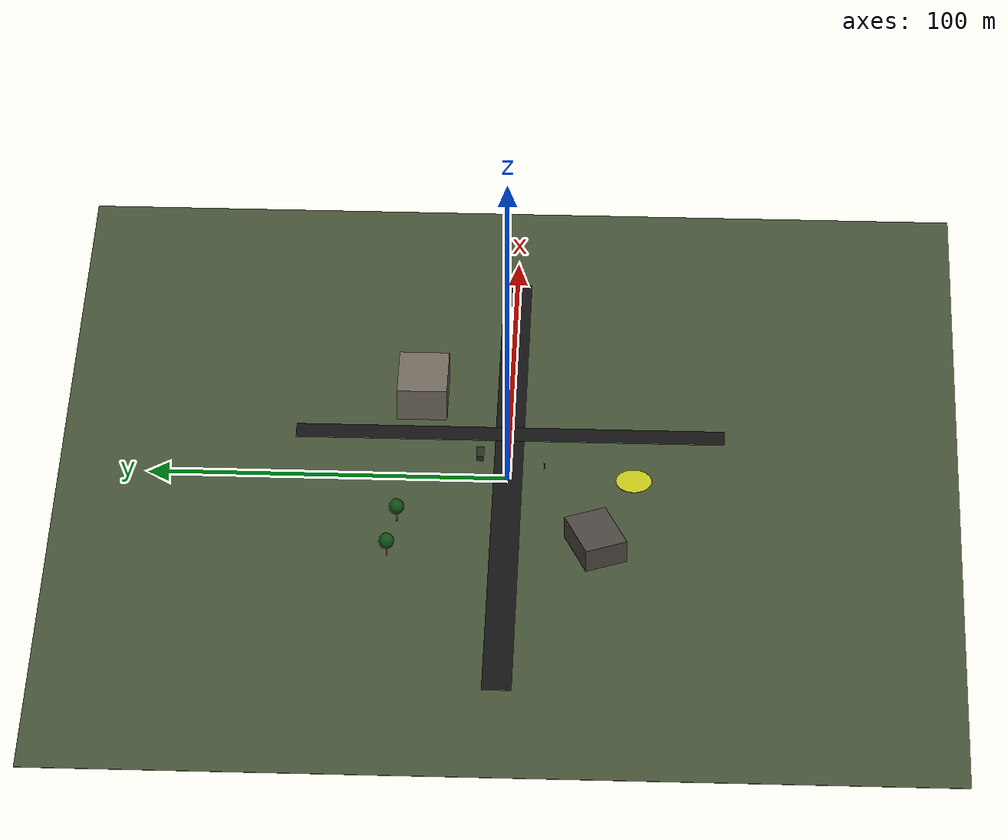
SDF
<?xml version="1.0" ?>
<sdf version="1.9">
  <world name="battlefield_sar_world">

        <plugin filename="gz-sim-physics-system"
            name="gz::sim::systems::Physics"/>

    <plugin filename="gz-sim-user-commands-system"
            name="gz::sim::systems::UserCommands"/>

    <plugin filename="gz-sim-scene-broadcaster-system"
            name="gz::sim::systems::SceneBroadcaster"/>

    <plugin filename="gz-sim-imu-system"
            name="gz::sim::systems::Imu"/>

    <plugin filename="gz-sim-air-pressure-system"
            name="gz::sim::systems::AirPressure"/>

    <plugin filename="gz-sim-magnetometer-system"
            name="gz::sim::systems::Magnetometer"/>

    <plugin filename="gz-sim-navsat-system"
            name="gz::sim::systems::NavSat"/>

    <plugin filename="gz-sim-sensors-system"
            name="gz::sim::systems::Sensors">
      <render_engine>ogre2</render_engine>
    </plugin>

    <gravity>0 0 -9.8</gravity>

        <magnetic_field>6.0e-6 2.3e-5 -4.2e-5</magnetic_field>

    <spherical_coordinates>
      <surface_model>EARTH_WGS84</surface_model>
      <world_frame_orientation>ENU</world_frame_orientation>
      <latitude_deg>47.397742</latitude_deg>
      <longitude_deg>8.545594</longitude_deg>
      <elevation>488.0</elevation>
      <heading_deg>0</heading_deg>
    </spherical_coordinates>

    <scene>
      <ambient>0.45 0.45 0.45 1</ambient>
      <background>0.65 0.75 0.85 1</background>
      <shadows>true</shadows>
    </scene>

    <light name="sun" type="directional">
      <cast_shadows>true</cast_shadows>
      <pose>0 0 100 0 0 0</pose>
      <diffuse>0.9 0.85 0.75 1</diffuse>
      <specular>0.2 0.2 0.2 1</specular>
      <direction>-0.5 0.3 -1</direction>
    </light>

    <!-- Ground -->
    <model name="ground_plane">
      <static>true</static>
      <link name="link">
        <collision name="collision">
          <geometry>
            <box>
              <size>250 250 0.1</size>
            </box>
          </geometry>
        </collision>
        <visual name="visual">
          <geometry>
            <box>
              <size>250 250 0.1</size>
            </box>
          </geometry>
          <material>
            <ambient>0.28 0.33 0.22 1</ambient>
            <diffuse>0.28 0.33 0.22 1</diffuse>
          </material>
        </visual>
      </link>
    </model>

    <!-- Main road -->
    <model name="main_road">
      <static>true</static>
      <pose>0 0 0.06 0 0 0</pose>
      <link name="link">
        <visual name="visual">
          <geometry>
            <box>
              <size>180 8 0.05</size>
            </box>
          </geometry>
          <material>
            <ambient>0.08 0.08 0.08 1</ambient>
            <diffuse>0.08 0.08 0.08 1</diffuse>
          </material>
        </visual>
      </link>
    </model>

    <!-- Cross road -->
    <model name="cross_road">
      <static>true</static>
      <pose>20 0 0.07 0 0 1.5708</pose>
      <link name="link">
        <visual name="visual">
          <geometry>
            <box>
              <size>120 6 0.05</size>
            </box>
          </geometry>
          <material>
            <ambient>0.08 0.08 0.08 1</ambient>
            <diffuse>0.08 0.08 0.08 1</diffuse>
          </material>
        </visual>
      </link>
    </model>

    <!-- Building 1 -->
    <model name="building_01">
      <static>true</static>
      <pose>35 25 5 0 0 0</pose>
      <link name="link">
        <collision name="collision">
          <geometry>
            <box>
              <size>18 14 10</size>
            </box>
          </geometry>
        </collision>
        <visual name="visual">
          <geometry>
            <box>
              <size>18 14 10</size>
            </box>
          </geometry>
          <material>
            <ambient>0.45 0.42 0.38 1</ambient>
            <diffuse>0.45 0.42 0.38 1</diffuse>
          </material>
        </visual>
      </link>
    </model>

    <!-- Damaged building placeholder -->
    <model name="damaged_building_01">
      <static>true</static>
      <pose>-30 -25 3.5 0 0 0.4</pose>
      <link name="link">
        <collision name="collision">
          <geometry>
            <box>
              <size>16 12 7</size>
            </box>
          </geometry>
        </collision>
        <visual name="visual">
          <geometry>
            <box>
              <size>16 12 7</size>
            </box>
          </geometry>
          <material>
            <ambient>0.30 0.28 0.26 1</ambient>
            <diffuse>0.30 0.28 0.26 1</diffuse>
          </material>
        </visual>
      </link>
    </model>

    <!-- Vehicle placeholder -->
    <model name="vehicle_01">
      <static>true</static>
      <pose>10 8 0.8 0 0 0</pose>
      <link name="link">
        <collision name="collision">
          <geometry>
            <box>
              <size>4.5 2.0 1.6</size>
            </box>
          </geometry>
        </collision>
        <visual name="visual">
          <geometry>
            <box>
              <size>4.5 2.0 1.6</size>
            </box>
          </geometry>
          <material>
            <ambient>0.15 0.18 0.12 1</ambient>
            <diffuse>0.15 0.18 0.12 1</diffuse>
          </material>
        </visual>
      </link>
    </model>

    <!-- Person placeholder -->
    <model name="person_01">
      <static>true</static>
      <pose>5 -10 0.9 0 0 0</pose>
      <link name="body">
        <visual name="body_visual">
          <geometry>
            <cylinder>
              <radius>0.25</radius>
              <length>1.5</length>
            </cylinder>
          </geometry>
          <material>
            <ambient>0.15 0.15 0.15 1</ambient>
            <diffuse>0.15 0.15 0.15 1</diffuse>
          </material>
        </visual>
      </link>
    </model>

    <!-- Tree placeholders -->
    <model name="tree_01">
      <static>true</static>
      <pose>-20 30 2.5 0 0 0</pose>
      <link name="trunk">
        <visual name="trunk_visual">
          <geometry>
            <cylinder>
              <radius>0.3</radius>
              <length>4</length>
            </cylinder>
          </geometry>
          <material>
            <ambient>0.25 0.12 0.05 1</ambient>
            <diffuse>0.25 0.12 0.05 1</diffuse>
          </material>
        </visual>
      </link>
      <link name="leaves">
        <pose>0 0 3 0 0 0</pose>
        <visual name="leaves_visual">
          <geometry>
            <sphere>
              <radius>2.2</radius>
            </sphere>
          </geometry>
          <material>
            <ambient>0.05 0.30 0.08 1</ambient>
            <diffuse>0.05 0.30 0.08 1</diffuse>
          </material>
        </visual>
      </link>
    </model>

    <model name="tree_02">
      <static>true</static>
      <pose>-35 32 2.5 0 0 0</pose>
      <link name="trunk">
        <visual name="trunk_visual">
          <geometry>
            <cylinder>
              <radius>0.3</radius>
              <length>4</length>
            </cylinder>
          </geometry>
          <material>
            <ambient>0.25 0.12 0.05 1</ambient>
            <diffuse>0.25 0.12 0.05 1</diffuse>
          </material>
        </visual>
      </link>
      <link name="leaves">
        <pose>0 0 3 0 0 0</pose>
        <visual name="leaves_visual">
          <geometry>
            <sphere>
              <radius>2.2</radius>
            </sphere>
          </geometry>
          <material>
            <ambient>0.05 0.30 0.08 1</ambient>
            <diffuse>0.05 0.30 0.08 1</diffuse>
          </material>
        </visual>
      </link>
    </model>

    <!-- Landing zone -->
    <model name="landing_zone">
      <static>true</static>
      <pose>0 -35 0.11 0 0 0</pose>
      <link name="link">
        <visual name="visual">
          <geometry>
            <cylinder>
              <radius>5</radius>
              <length>0.03</length>
            </cylinder>
          </geometry>
          <material>
            <ambient>0.8 0.8 0.1 1</ambient>
            <diffuse>0.8 0.8 0.1 1</diffuse>
          </material>
        </visual>
      </link>
    </model>

  </world>
</sdf>
